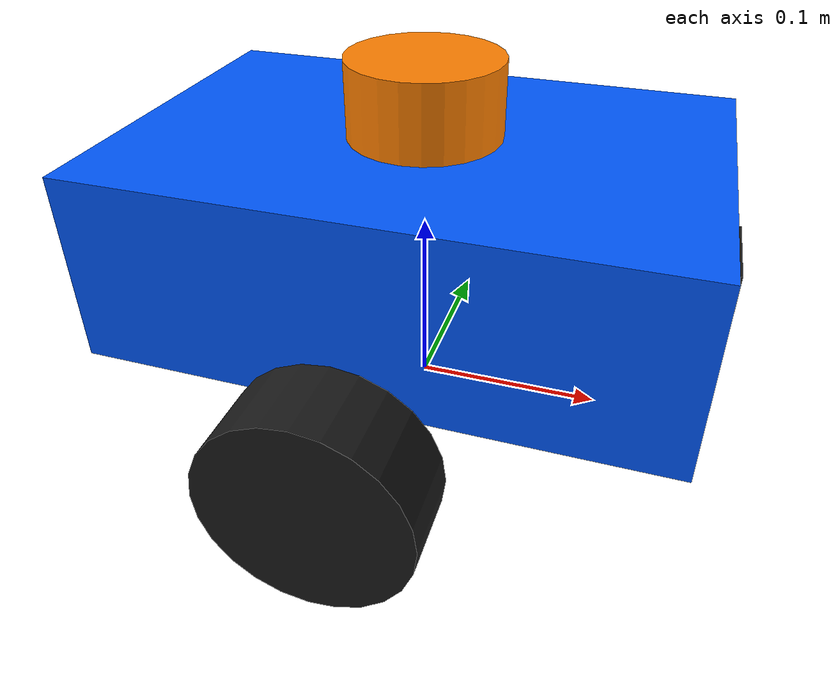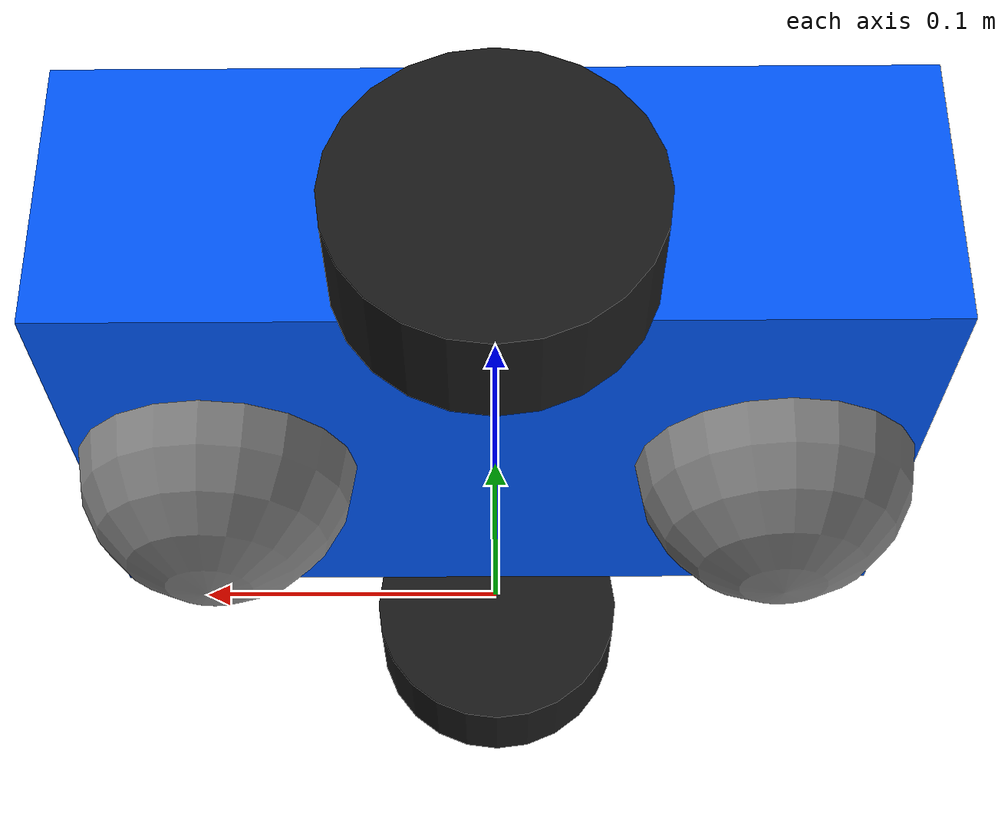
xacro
<?xml version="1.0"?>
<robot name="my_robot" xmlns:xacro="http://ros.org/wiki/xacro">

  <xacro:property name="base_length"     value="0.30"/>
  <xacro:property name="base_width"      value="0.20"/>
  <xacro:property name="base_height"     value="0.10"/>
  <xacro:property name="wheel_radius"    value="0.05"/>
  <xacro:property name="wheel_width"     value="0.04"/>
  <xacro:property name="wheel_separation" value="0.30"/>
  <xacro:property name="caster_radius"   value="${wheel_radius}"/>

  <material name="blue"><color rgba="0.0 0.35 1.0 1.0"/></material>
  <material name="orange"><color rgba="1.0 0.5 0.0 1.0"/></material>
  <material name="black"><color rgba="0.1 0.1 0.1 1.0"/></material>
  <material name="grey"><color rgba="0.5 0.5 0.5 1.0"/></material>

  <link name="base_footprint"/>

  <joint name="base_joint" type="fixed">
    <parent link="base_footprint"/>
    <child link="base_link"/>
    <origin xyz="0 0 ${wheel_radius}" rpy="0 0 0"/>
  </joint>

  <link name="base_link">
    <visual>
      <origin xyz="0 0 ${base_height/2}" rpy="0 0 0"/>
      <geometry><box size="${base_length} ${base_width} ${base_height}"/></geometry>
      <material name="blue"/>
    </visual>
    <collision>
      <origin xyz="0 0 ${base_height/2}" rpy="0 0 0"/>
      <geometry><box size="${base_length} ${base_width} ${base_height}"/></geometry>
    </collision>
    <inertial>
      <origin xyz="0 0 ${base_height/2}" rpy="0 0 0"/>
      <mass value="1.0"/>
      <inertia ixx="0.004167" ixy="0" ixz="0" iyy="0.008333" iyz="0" izz="0.010833"/>
    </inertial>
  </link>

  <xacro:macro name="wheel" params="prefix y_reflect">
    <link name="${prefix}_wheel">
      <visual>
        <origin xyz="0 0 0" rpy="1.5708 0 0"/>
        <geometry><cylinder radius="${wheel_radius}" length="${wheel_width}"/></geometry>
        <material name="black"/>
      </visual>
      <collision>
        <origin xyz="0 0 0" rpy="1.5708 0 0"/>
        <geometry><cylinder radius="${wheel_radius}" length="${wheel_width}"/></geometry>
      </collision>
      <inertial>
        <origin xyz="0 0 0" rpy="1.5708 0 0"/>
        <mass value="0.1"/>
        <inertia ixx="0.0000758" ixy="0" ixz="0" iyy="0.0000758" iyz="0" izz="0.000125"/>
      </inertial>
    </link>
    <joint name="${prefix}_wheel_joint" type="continuous">
      <parent link="base_link"/>
      <child link="${prefix}_wheel"/>
      <origin xyz="0 ${y_reflect * wheel_separation/2} 0" rpy="0 0 0"/>
      <axis xyz="0 1 0"/>
    </joint>
  </xacro:macro>

  <xacro:wheel prefix="left"  y_reflect="1"/>
  <xacro:wheel prefix="right" y_reflect="-1"/>

  <link name="caster">
    <visual><geometry><sphere radius="${caster_radius}"/></geometry><material name="grey"/></visual>
    <collision><geometry><sphere radius="${caster_radius}"/></geometry></collision>
    <inertial>
      <mass value="0.05"/>
      <inertia ixx="0.00005" ixy="0" ixz="0" iyy="0.00005" iyz="0" izz="0.00005"/>
    </inertial>
  </link>

  <joint name="caster_joint" type="fixed">
    <parent link="base_link"/>
    <child link="caster"/>
    <origin xyz="${base_length/2 - caster_radius} 0 0" rpy="0 0 0"/>
  </joint>

  <!-- Rear caster: with only the front caster the robot tipped back about 19 deg on every start
       (measured with tools/tilt_check.py), pointing the LiDAR into the floor. -->
  <link name="caster_rear">
    <visual><geometry><sphere radius="${caster_radius}"/></geometry><material name="grey"/></visual>
    <collision><geometry><sphere radius="${caster_radius}"/></geometry></collision>
    <inertial>
      <mass value="0.05"/>
      <inertia ixx="0.00005" ixy="0" ixz="0" iyy="0.00005" iyz="0" izz="0.00005"/>
    </inertial>
  </link>

  <joint name="caster_rear_joint" type="fixed">
    <parent link="base_link"/>
    <child link="caster_rear"/>
    <origin xyz="${-(base_length/2 - caster_radius)} 0 0" rpy="0 0 0"/>
  </joint>

  <link name="lidar_link">
    <visual><geometry><cylinder radius="0.04" length="0.04"/></geometry><material name="orange"/></visual>
    <collision><geometry><cylinder radius="0.04" length="0.04"/></geometry></collision>
    <inertial>
      <mass value="0.1"/>
      <inertia ixx="0.0000533" ixy="0" ixz="0" iyy="0.0000533" iyz="0" izz="0.00008"/>
    </inertial>
  </link>

  <joint name="lidar_joint" type="fixed">
    <parent link="base_link"/>
    <child link="lidar_link"/>
    <origin xyz="0 0 ${base_height + 0.02}" rpy="0 0 0"/>
  </joint>

  <link name="camera_link">
    <visual><geometry><box size="0.02 0.05 0.02"/></geometry><material name="black"/></visual>
    <collision><geometry><box size="0.02 0.05 0.02"/></geometry></collision>
    <inertial>
      <mass value="0.05"/>
      <inertia ixx="0.00001" ixy="0" ixz="0" iyy="0.00001" iyz="0" izz="0.00001"/>
    </inertial>
  </link>

  <joint name="camera_joint" type="fixed">
    <parent link="base_link"/>
    <child link="camera_link"/>
    <origin xyz="${base_length/2} 0 ${base_height/2}" rpy="0 0 0"/>
  </joint>

  <!-- Optical frame for the RGB-D images (z forward, x right, y down) -->
  <link name="camera_optical_link"/>
  <joint name="camera_optical_joint" type="fixed">
    <parent link="camera_link"/>
    <child link="camera_optical_link"/>
    <origin xyz="0 0 0" rpy="-1.5708 0 -1.5708"/>
  </joint>

  <link name="imu_link">
    <inertial>
      <mass value="0.01"/>
      <inertia ixx="0.000001" ixy="0" ixz="0" iyy="0.000001" iyz="0" izz="0.000001"/>
    </inertial>
  </link>

  <joint name="imu_joint" type="fixed">
    <parent link="base_link"/>
    <child link="imu_link"/>
    <origin xyz="0 0 ${base_height/2}" rpy="0 0 0"/>
  </joint>

  <ros2_control name="GazeboSimSystem" type="system">
    <hardware>
      <plugin>gz_ros2_control/GazeboSimSystem</plugin>
    </hardware>
    <joint name="left_wheel_joint">
      <command_interface name="velocity">
        <param name="min">-10.0</param>
        <param name="max">10.0</param>
      </command_interface>
      <state_interface name="position"/>
      <state_interface name="velocity"/>
    </joint>
    <joint name="right_wheel_joint">
      <command_interface name="velocity">
        <param name="min">-10.0</param>
        <param name="max">10.0</param>
      </command_interface>
      <state_interface name="position"/>
      <state_interface name="velocity"/>
    </joint>
  </ros2_control>

  <gazebo reference="lidar_link">
    <sensor name="lidar" type="gpu_lidar">
      <topic>scan</topic>
      <gz_frame_id>lidar_link</gz_frame_id>
      <update_rate>10</update_rate>
      <always_on>1</always_on>
      <visualize>true</visualize>
      <lidar>
        <scan>
          <horizontal>
            <samples>360</samples>
            <resolution>1</resolution>
            <min_angle>-3.14159</min_angle>
            <max_angle>3.14159</max_angle>
          </horizontal>
          <vertical>
            <samples>1</samples>
            <resolution>1</resolution>
            <min_angle>0</min_angle>
            <max_angle>0</max_angle>
          </vertical>
        </scan>
        <range>
          <min>0.12</min>
          <max>20.0</max>
          <resolution>0.01</resolution>
        </range>
        <noise>
          <type>gaussian</type>
          <mean>0.0</mean>
          <stddev>0.01</stddev>
        </noise>
      </lidar>
    </sensor>
  </gazebo>

  <gazebo reference="camera_link">
    <sensor name="camera" type="rgbd_camera">
      <topic>camera</topic>
      <gz_frame_id>camera_optical_link</gz_frame_id>
      <update_rate>10</update_rate>
      <always_on>1</always_on>
      <visualize>false</visualize>
      <camera>
        <horizontal_fov>1.047</horizontal_fov>
        <image>
          <width>640</width>
          <height>480</height>
          <format>R8G8B8</format>
        </image>
        <clip>
          <near>0.1</near>
          <far>20</far>
        </clip>
        <depth_camera>
          <clip>
            <near>0.1</near>
            <far>10</far>
          </clip>
        </depth_camera>
      </camera>
    </sensor>
  </gazebo>

  <gazebo reference="imu_link">
    <sensor name="imu" type="imu">
      <topic>imu</topic>
      <gz_frame_id>imu_link</gz_frame_id>
      <update_rate>50</update_rate>
      <always_on>1</always_on>
      <imu>
        <angular_velocity>
          <x><noise type="gaussian"><mean>0.0</mean><stddev>0.009</stddev></noise></x>
          <y><noise type="gaussian"><mean>0.0</mean><stddev>0.009</stddev></noise></y>
          <z><noise type="gaussian"><mean>0.0</mean><stddev>0.009</stddev></noise></z>
        </angular_velocity>
        <linear_acceleration>
          <x><noise type="gaussian"><mean>0.0</mean><stddev>0.021</stddev></noise></x>
          <y><noise type="gaussian"><mean>0.0</mean><stddev>0.021</stddev></noise></y>
          <z><noise type="gaussian"><mean>0.0</mean><stddev>0.021</stddev></noise></z>
        </linear_acceleration>
      </imu>
    </sensor>
  </gazebo>

  <!-- Casters are fixed spheres: almost no friction so they slide like swivel casters. -->
  <gazebo reference="caster">
    <mu1>0.01</mu1>
    <mu2>0.01</mu2>
  </gazebo>
  <gazebo reference="caster_rear">
    <mu1>0.01</mu1>
    <mu2>0.01</mu2>
  </gazebo>

  <gazebo>
    <plugin filename="gz_ros2_control-system" name="gz_ros2_control::GazeboSimROS2ControlPlugin">
      <parameters>$(find my_robot)/config/controllers.yaml</parameters>
    </plugin>
  </gazebo>

</robot>
